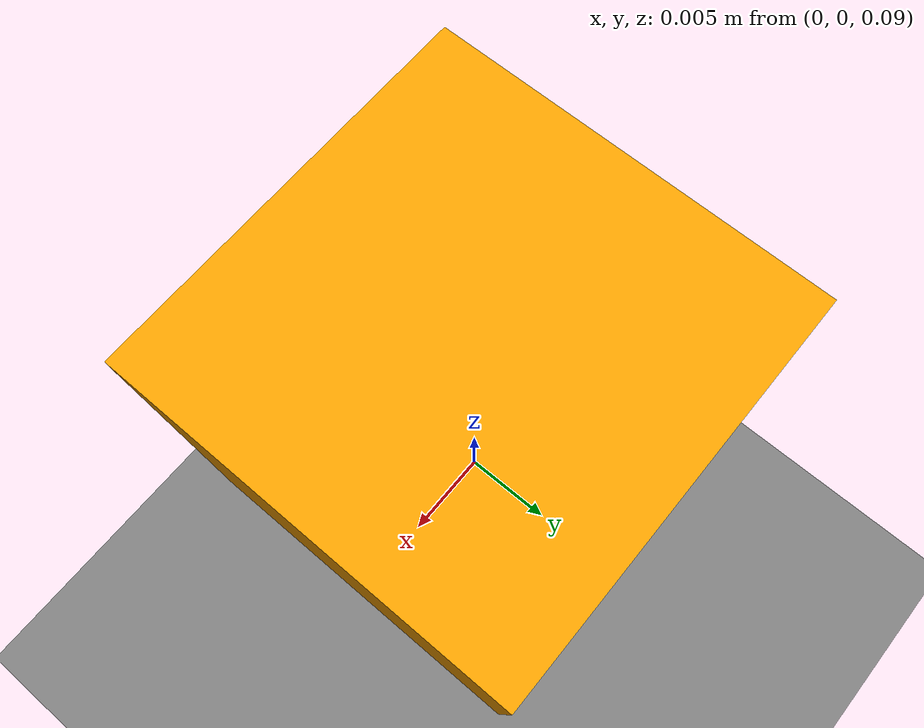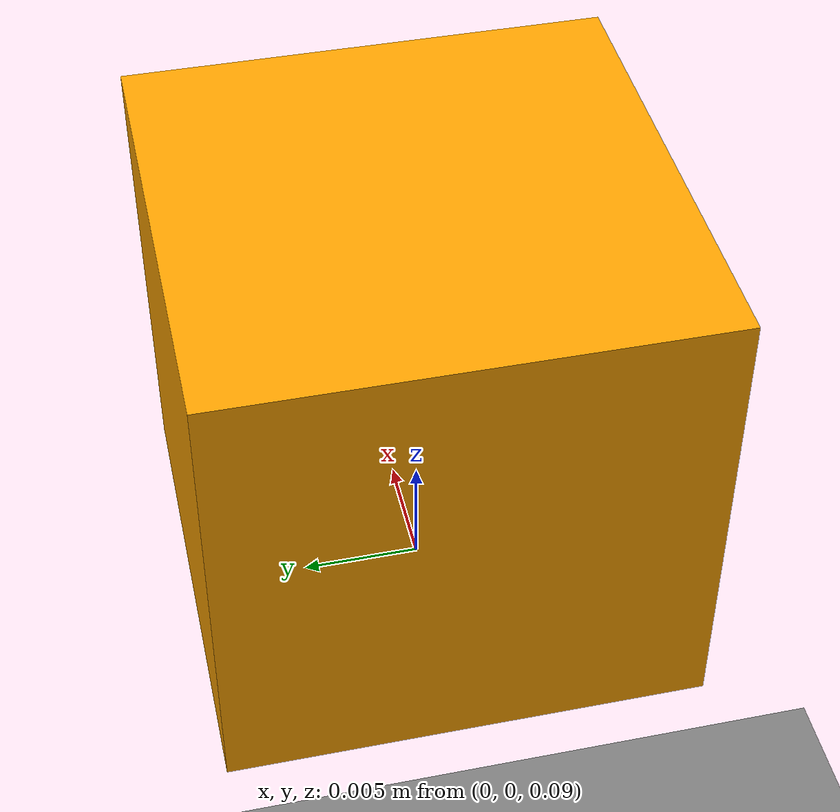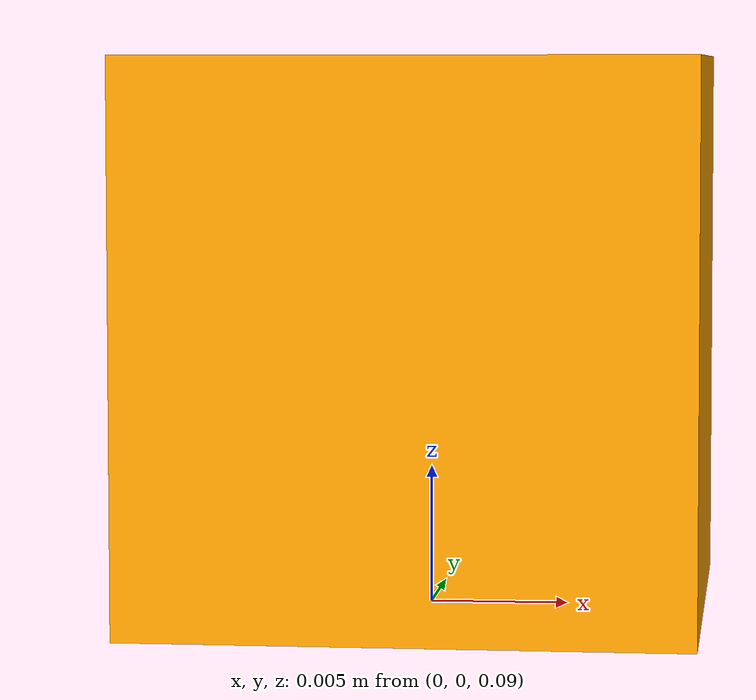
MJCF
<mujoco>
  <option timestep="0.002" />

  <!-- visual -->
  <visual>
    <global offwidth="2560" offheight="1440" />
  </visual>

  <!-- asset -->
  <asset>
    <mesh file="part.obj" />
  </asset>

  <worldbody>
    <!-- light -->

    <!-- part  -->
    <body name="part" pos="0 0 0" euler="90 0 0">
      <geom type="mesh" mesh="part" />

      <!-- camera for light test -->
    </body>

    <!-- camera -->
    <body name="camera" pos="0 0 0.1" gravcomp="1">
      <light directional="true" />
      <geom type="box" pos="0 0 0" size="0.01 0.01 0.01" rgba="1 0.64 0 1" />
      <camera name="camera" fovy="30" />
      <joint name="camera_x" type="slide" axis="1 0 0" />
      <joint name="camera_y" type="slide" axis="0 1 0" />
      <joint name="camera_z" type="slide" axis="0 0 1" />
      <joint name="camera_yaw" type="hinge" axis="0 1 0" />
      <joint name="camera_pitch" type="hinge" axis="1 0 0" />
    </body>
  </worldbody>

  <!-- actuator -->
   <actuator>
    <position name="camera_x" joint="camera_x" />
    <position name="camera_y" joint="camera_y" />
    <position name="camera_z" joint="camera_z" />
    <position name="camera_yaw" joint="camera_yaw" />
    <position name="camera_pitch" joint="camera_pitch" />
   </actuator>

</mujoco>
